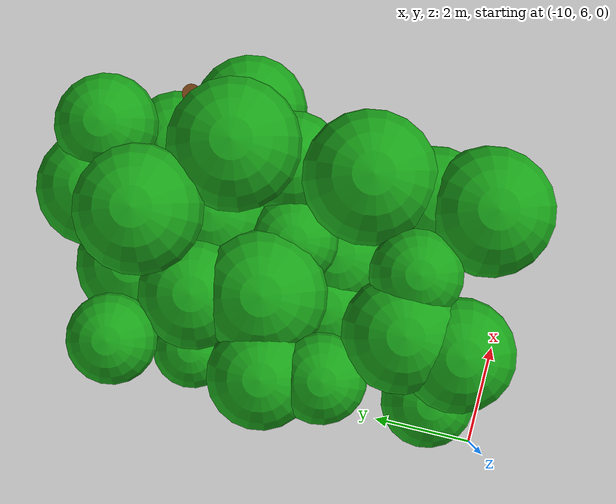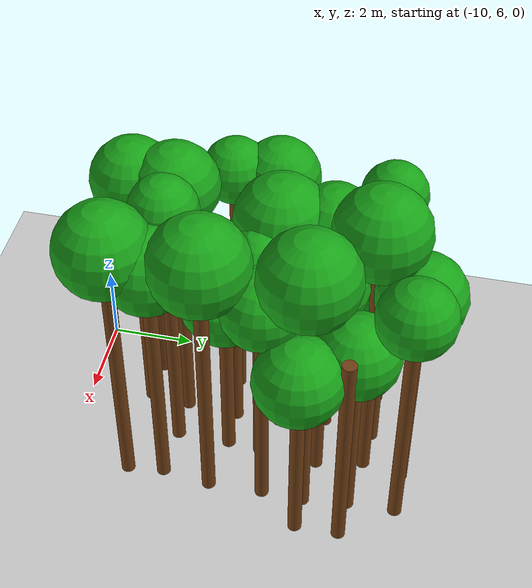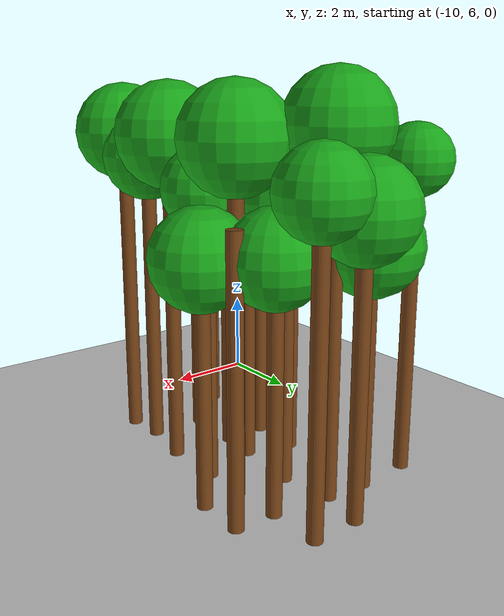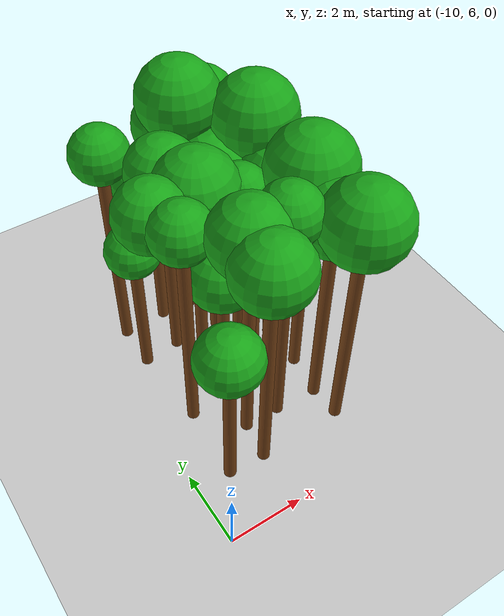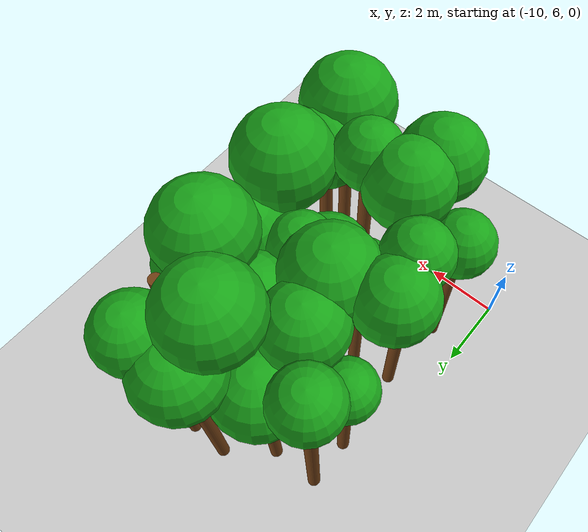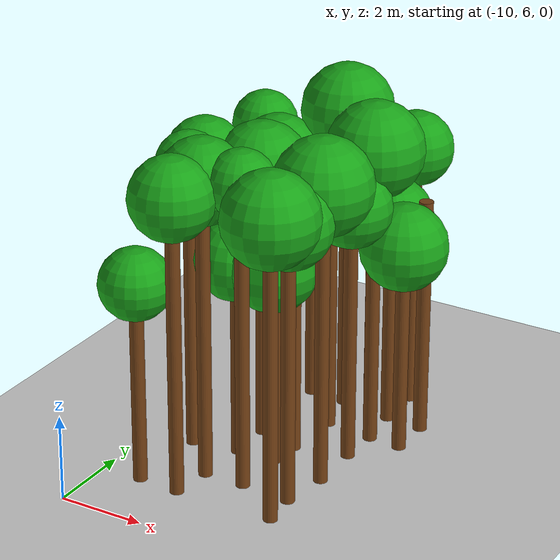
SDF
<sdf version="1.6">
 <world name="forest_world">
  <include><uri>model://sun</uri></include>
  <include><uri>model://ground_plane</uri></include>
  <model name="tree_1079_trunk">
   <static>true</static>
   <pose>-9.04 7.58 2.13 0 0 0</pose>
   <link name="link">
    <collision name="collision">
     <geometry><cylinder><radius>0.16</radius><length>4.26</length></cylinder></geometry>
    </collision>
    <visual name="visual">
     <geometry><cylinder><radius>0.16</radius><length>4.26</length></cylinder></geometry>
     <material><ambient>0.35 0.20 0.05 1</ambient><diffuse>0.45 0.25 0.08 1</diffuse></material>
    </visual>
   </link>
  </model>
  <model name="tree_1079_leaf">
   <static>true</static>
   <pose>-9.04 7.58 4.75 0 0 0</pose>
   <link name="link">
    <collision name="collision"><geometry><sphere><radius>0.82</radius></sphere></geometry></collision>
    <visual name="visual">
     <geometry><sphere><radius>0.82</radius></sphere></geometry>
     <material><ambient>0.05 0.45 0.05 1</ambient><diffuse>0.10 0.65 0.10 1</diffuse></material>
    </visual>
   </link>
  </model>
  <model name="tree_1081_trunk">
   <static>true</static>
   <pose>-8.94 9.57 3.18 0 0 0</pose>
   <link name="link">
    <collision name="collision">
     <geometry><cylinder><radius>0.16</radius><length>6.35</length></cylinder></geometry>
    </collision>
    <visual name="visual">
     <geometry><cylinder><radius>0.16</radius><length>6.35</length></cylinder></geometry>
     <material><ambient>0.35 0.20 0.05 1</ambient><diffuse>0.45 0.25 0.08 1</diffuse></material>
    </visual>
   </link>
  </model>
  <model name="tree_1081_leaf">
   <static>true</static>
   <pose>-8.94 9.57 6.81 0 0 0</pose>
   <link name="link">
    <collision name="collision"><geometry><sphere><radius>0.75</radius></sphere></geometry></collision>
    <visual name="visual">
     <geometry><sphere><radius>0.75</radius></sphere></geometry>
     <material><ambient>0.05 0.45 0.05 1</ambient><diffuse>0.10 0.65 0.10 1</diffuse></material>
    </visual>
   </link>
  </model>
  <model name="tree_1082_leaf">
   <static>true</static>
   <pose>-9.14 10.52 6.64 0 0 0</pose>
   <link name="link">
    <collision name="collision"><geometry><sphere><radius>0.89</radius></sphere></geometry></collision>
    <visual name="visual">
     <geometry><sphere><radius>0.89</radius></sphere></geometry>
     <material><ambient>0.05 0.45 0.05 1</ambient><diffuse>0.10 0.65 0.10 1</diffuse></material>
    </visual>
   </link>
  </model>
  <model name="tree_1083_trunk">
   <static>true</static>
   <pose>-9.12 11.81 2.00 0 0 0</pose>
   <link name="link">
    <collision name="collision">
     <geometry><cylinder><radius>0.16</radius><length>4.00</length></cylinder></geometry>
    </collision>
    <visual name="visual">
     <geometry><cylinder><radius>0.16</radius><length>4.00</length></cylinder></geometry>
     <material><ambient>0.35 0.20 0.05 1</ambient><diffuse>0.45 0.25 0.08 1</diffuse></material>
    </visual>
   </link>
  </model>
  <model name="tree_1083_leaf">
   <static>true</static>
   <pose>-9.12 11.81 4.44 0 0 0</pose>
   <link name="link">
    <collision name="collision"><geometry><sphere><radius>0.72</radius></sphere></geometry></collision>
    <visual name="visual">
     <geometry><sphere><radius>0.72</radius></sphere></geometry>
     <material><ambient>0.05 0.45 0.05 1</ambient><diffuse>0.10 0.65 0.10 1</diffuse></material>
    </visual>
   </link>
  </model>
  <model name="tree_1084_trunk">
   <static>true</static>
   <pose>-9.13 13.02 3.06 0 0 0</pose>
   <link name="link">
    <collision name="collision">
     <geometry><cylinder><radius>0.16</radius><length>6.13</length></cylinder></geometry>
    </collision>
    <visual name="visual">
     <geometry><cylinder><radius>0.16</radius><length>6.13</length></cylinder></geometry>
     <material><ambient>0.35 0.20 0.05 1</ambient><diffuse>0.45 0.25 0.08 1</diffuse></material>
    </visual>
   </link>
  </model>
  <model name="tree_1084_leaf">
   <static>true</static>
   <pose>-9.13 13.02 6.58 0 0 0</pose>
   <link name="link">
    <collision name="collision"><geometry><sphere><radius>0.75</radius></sphere></geometry></collision>
    <visual name="visual">
     <geometry><sphere><radius>0.75</radius></sphere></geometry>
     <material><ambient>0.05 0.45 0.05 1</ambient><diffuse>0.10 0.65 0.10 1</diffuse></material>
    </visual>
   </link>
  </model>
  <model name="tree_1134_trunk">
   <static>true</static>
   <pose>-8.05 7.53 3.19 0 0 0</pose>
   <link name="link">
    <collision name="collision">
     <geometry><cylinder><radius>0.16</radius><length>6.38</length></cylinder></geometry>
    </collision>
    <visual name="visual">
     <geometry><cylinder><radius>0.16</radius><length>6.38</length></cylinder></geometry>
     <material><ambient>0.35 0.20 0.05 1</ambient><diffuse>0.45 0.25 0.08 1</diffuse></material>
    </visual>
   </link>
  </model>
  <model name="tree_1134_leaf">
   <static>true</static>
   <pose>-8.05 7.53 6.95 0 0 0</pose>
   <link name="link">
    <collision name="collision"><geometry><sphere><radius>0.94</radius></sphere></geometry></collision>
    <visual name="visual">
     <geometry><sphere><radius>0.94</radius></sphere></geometry>
     <material><ambient>0.05 0.45 0.05 1</ambient><diffuse>0.10 0.65 0.10 1</diffuse></material>
    </visual>
   </link>
  </model>
  <model name="tree_1135_trunk">
   <static>true</static>
   <pose>-7.93 8.50 3.22 0 0 0</pose>
   <link name="link">
    <collision name="collision">
     <geometry><cylinder><radius>0.16</radius><length>6.44</length></cylinder></geometry>
    </collision>
    <visual name="visual">
     <geometry><cylinder><radius>0.16</radius><length>6.44</length></cylinder></geometry>
     <material><ambient>0.35 0.20 0.05 1</ambient><diffuse>0.45 0.25 0.08 1</diffuse></material>
    </visual>
   </link>
  </model>
  <model name="tree_1135_leaf">
   <static>true</static>
   <pose>-7.93 8.50 7.02 0 0 0</pose>
   <link name="link">
    <collision name="collision"><geometry><sphere><radius>0.97</radius></sphere></geometry></collision>
    <visual name="visual">
     <geometry><sphere><radius>0.97</radius></sphere></geometry>
     <material><ambient>0.05 0.45 0.05 1</ambient><diffuse>0.10 0.65 0.10 1</diffuse></material>
    </visual>
   </link>
  </model>
  <model name="tree_1136_trunk">
   <static>true</static>
   <pose>-7.85 9.74 2.10 0 0 0</pose>
   <link name="link">
    <collision name="collision">
     <geometry><cylinder><radius>0.16</radius><length>4.20</length></cylinder></geometry>
    </collision>
    <visual name="visual">
     <geometry><cylinder><radius>0.16</radius><length>4.20</length></cylinder></geometry>
     <material><ambient>0.35 0.20 0.05 1</ambient><diffuse>0.45 0.25 0.08 1</diffuse></material>
    </visual>
   </link>
  </model>
  <model name="tree_1136_leaf">
   <static>true</static>
   <pose>-7.85 9.74 4.77 0 0 0</pose>
   <link name="link">
    <collision name="collision"><geometry><sphere><radius>0.95</radius></sphere></geometry></collision>
    <visual name="visual">
     <geometry><sphere><radius>0.95</radius></sphere></geometry>
     <material><ambient>0.05 0.45 0.05 1</ambient><diffuse>0.10 0.65 0.10 1</diffuse></material>
    </visual>
   </link>
  </model>
  <model name="tree_1137_trunk">
   <static>true</static>
   <pose>-7.86 10.81 2.93 0 0 0</pose>
   <link name="link">
    <collision name="collision">
     <geometry><cylinder><radius>0.16</radius><length>5.87</length></cylinder></geometry>
    </collision>
    <visual name="visual">
     <geometry><cylinder><radius>0.16</radius><length>5.87</length></cylinder></geometry>
     <material><ambient>0.35 0.20 0.05 1</ambient><diffuse>0.45 0.25 0.08 1</diffuse></material>
    </visual>
   </link>
  </model>
  <model name="tree_1137_leaf">
   <static>true</static>
   <pose>-7.86 10.81 6.51 0 0 0</pose>
   <link name="link">
    <collision name="collision"><geometry><sphere><radius>1.07</radius></sphere></geometry></collision>
    <visual name="visual">
     <geometry><sphere><radius>1.07</radius></sphere></geometry>
     <material><ambient>0.05 0.45 0.05 1</ambient><diffuse>0.10 0.65 0.10 1</diffuse></material>
    </visual>
   </link>
  </model>
  <model name="tree_1138_trunk">
   <static>true</static>
   <pose>-8.10 11.90 2.92 0 0 0</pose>
   <link name="link">
    <collision name="collision">
     <geometry><cylinder><radius>0.16</radius><length>5.84</length></cylinder></geometry>
    </collision>
    <visual name="visual">
     <geometry><cylinder><radius>0.16</radius><length>5.84</length></cylinder></geometry>
     <material><ambient>0.35 0.20 0.05 1</ambient><diffuse>0.45 0.25 0.08 1</diffuse></material>
    </visual>
   </link>
  </model>
  <model name="tree_1138_leaf">
   <static>true</static>
   <pose>-8.10 11.90 6.40 0 0 0</pose>
   <link name="link">
    <collision name="collision"><geometry><sphere><radius>0.93</radius></sphere></geometry></collision>
    <visual name="visual">
     <geometry><sphere><radius>0.93</radius></sphere></geometry>
     <material><ambient>0.05 0.45 0.05 1</ambient><diffuse>0.10 0.65 0.10 1</diffuse></material>
    </visual>
   </link>
  </model>
  <model name="tree_1139_trunk">
   <static>true</static>
   <pose>-7.89 13.08 2.21 0 0 0</pose>
   <link name="link">
    <collision name="collision">
     <geometry><cylinder><radius>0.16</radius><length>4.43</length></cylinder></geometry>
    </collision>
    <visual name="visual">
     <geometry><cylinder><radius>0.16</radius><length>4.43</length></cylinder></geometry>
     <material><ambient>0.35 0.20 0.05 1</ambient><diffuse>0.45 0.25 0.08 1</diffuse></material>
    </visual>
   </link>
  </model>
  <model name="tree_1139_leaf">
   <static>true</static>
   <pose>-7.89 13.08 5.05 0 0 0</pose>
   <link name="link">
    <collision name="collision"><geometry><sphere><radius>1.04</radius></sphere></geometry></collision>
    <visual name="visual">
     <geometry><sphere><radius>1.04</radius></sphere></geometry>
     <material><ambient>0.05 0.45 0.05 1</ambient><diffuse>0.10 0.65 0.10 1</diffuse></material>
    </visual>
   </link>
  </model>
  <model name="tree_1190_trunk">
   <static>true</static>
   <pose>-6.96 8.50 3.36 0 0 0</pose>
   <link name="link">
    <collision name="collision">
     <geometry><cylinder><radius>0.16</radius><length>6.71</length></cylinder></geometry>
    </collision>
    <visual name="visual">
     <geometry><cylinder><radius>0.16</radius><length>6.71</length></cylinder></geometry>
     <material><ambient>0.35 0.20 0.05 1</ambient><diffuse>0.45 0.25 0.08 1</diffuse></material>
    </visual>
   </link>
  </model>
  <model name="tree_1190_leaf">
   <static>true</static>
   <pose>-6.96 8.50 7.17 0 0 0</pose>
   <link name="link">
    <collision name="collision"><geometry><sphere><radius>0.76</radius></sphere></geometry></collision>
    <visual name="visual">
     <geometry><sphere><radius>0.76</radius></sphere></geometry>
     <material><ambient>0.05 0.45 0.05 1</ambient><diffuse>0.10 0.65 0.10 1</diffuse></material>
    </visual>
   </link>
  </model>
  <model name="tree_1191_trunk">
   <static>true</static>
   <pose>-6.94 9.75 2.09 0 0 0</pose>
   <link name="link">
    <collision name="collision">
     <geometry><cylinder><radius>0.16</radius><length>4.18</length></cylinder></geometry>
    </collision>
    <visual name="visual">
     <geometry><cylinder><radius>0.16</radius><length>4.18</length></cylinder></geometry>
     <material><ambient>0.35 0.20 0.05 1</ambient><diffuse>0.45 0.25 0.08 1</diffuse></material>
    </visual>
   </link>
  </model>
  <model name="tree_1191_leaf">
   <static>true</static>
   <pose>-6.94 9.75 4.79 0 0 0</pose>
   <link name="link">
    <collision name="collision"><geometry><sphere><radius>1.01</radius></sphere></geometry></collision>
    <visual name="visual">
     <geometry><sphere><radius>1.01</radius></sphere></geometry>
     <material><ambient>0.05 0.45 0.05 1</ambient><diffuse>0.10 0.65 0.10 1</diffuse></material>
    </visual>
   </link>
  </model>
  <model name="tree_1192_trunk">
   <static>true</static>
   <pose>-6.88 10.53 2.86 0 0 0</pose>
   <link name="link">
    <collision name="collision">
     <geometry><cylinder><radius>0.16</radius><length>5.73</length></cylinder></geometry>
    </collision>
    <visual name="visual">
     <geometry><cylinder><radius>0.16</radius><length>5.73</length></cylinder></geometry>
     <material><ambient>0.35 0.20 0.05 1</ambient><diffuse>0.45 0.25 0.08 1</diffuse></material>
    </visual>
   </link>
  </model>
  <model name="tree_1192_leaf">
   <static>true</static>
   <pose>-6.88 10.53 6.18 0 0 0</pose>
   <link name="link">
    <collision name="collision"><geometry><sphere><radius>0.75</radius></sphere></geometry></collision>
    <visual name="visual">
     <geometry><sphere><radius>0.75</radius></sphere></geometry>
     <material><ambient>0.05 0.45 0.05 1</ambient><diffuse>0.10 0.65 0.10 1</diffuse></material>
    </visual>
   </link>
  </model>
  <model name="tree_1193_trunk">
   <static>true</static>
   <pose>-6.77 11.92 2.64 0 0 0</pose>
   <link name="link">
    <collision name="collision">
     <geometry><cylinder><radius>0.16</radius><length>5.29</length></cylinder></geometry>
    </collision>
    <visual name="visual">
     <geometry><cylinder><radius>0.16</radius><length>5.29</length></cylinder></geometry>
     <material><ambient>0.35 0.20 0.05 1</ambient><diffuse>0.45 0.25 0.08 1</diffuse></material>
    </visual>
   </link>
  </model>
  <model name="tree_1193_leaf">
   <static>true</static>
   <pose>-6.77 11.92 5.88 0 0 0</pose>
   <link name="link">
    <collision name="collision"><geometry><sphere><radius>0.98</radius></sphere></geometry></collision>
    <visual name="visual">
     <geometry><sphere><radius>0.98</radius></sphere></geometry>
     <material><ambient>0.05 0.45 0.05 1</ambient><diffuse>0.10 0.65 0.10 1</diffuse></material>
    </visual>
   </link>
  </model>
  <model name="tree_1194_trunk">
   <static>true</static>
   <pose>-6.99 13.02 3.35 0 0 0</pose>
   <link name="link">
    <collision name="collision">
     <geometry><cylinder><radius>0.16</radius><length>6.70</length></cylinder></geometry>
    </collision>
    <visual name="visual">
     <geometry><cylinder><radius>0.16</radius><length>6.70</length></cylinder></geometry>
     <material><ambient>0.35 0.20 0.05 1</ambient><diffuse>0.45 0.25 0.08 1</diffuse></material>
    </visual>
   </link>
  </model>
  <model name="tree_1194_leaf">
   <static>true</static>
   <pose>-6.99 13.02 7.33 0 0 0</pose>
   <link name="link">
    <collision name="collision"><geometry><sphere><radius>1.05</radius></sphere></geometry></collision>
    <visual name="visual">
     <geometry><sphere><radius>1.05</radius></sphere></geometry>
     <material><ambient>0.05 0.45 0.05 1</ambient><diffuse>0.10 0.65 0.10 1</diffuse></material>
    </visual>
   </link>
  </model>
  <model name="tree_1195_trunk">
   <static>true</static>
   <pose>-6.79 13.95 2.67 0 0 0</pose>
   <link name="link">
    <collision name="collision">
     <geometry><cylinder><radius>0.16</radius><length>5.34</length></cylinder></geometry>
    </collision>
    <visual name="visual">
     <geometry><cylinder><radius>0.16</radius><length>5.34</length></cylinder></geometry>
     <material><ambient>0.35 0.20 0.05 1</ambient><diffuse>0.45 0.25 0.08 1</diffuse></material>
    </visual>
   </link>
  </model>
  <model name="tree_1195_leaf">
   <static>true</static>
   <pose>-6.79 13.95 5.93 0 0 0</pose>
   <link name="link">
    <collision name="collision"><geometry><sphere><radius>0.99</radius></sphere></geometry></collision>
    <visual name="visual">
     <geometry><sphere><radius>0.99</radius></sphere></geometry>
     <material><ambient>0.05 0.45 0.05 1</ambient><diffuse>0.10 0.65 0.10 1</diffuse></material>
    </visual>
   </link>
  </model>
  <model name="tree_1244_trunk">
   <static>true</static>
   <pose>-5.70 7.58 3.18 0 0 0</pose>
   <link name="link">
    <collision name="collision">
     <geometry><cylinder><radius>0.16</radius><length>6.36</length></cylinder></geometry>
    </collision>
    <visual name="visual">
     <geometry><cylinder><radius>0.16</radius><length>6.36</length></cylinder></geometry>
     <material><ambient>0.35 0.20 0.05 1</ambient><diffuse>0.45 0.25 0.08 1</diffuse></material>
    </visual>
   </link>
  </model>
  <model name="tree_1244_leaf">
   <static>true</static>
   <pose>-5.70 7.58 6.99 0 0 0</pose>
   <link name="link">
    <collision name="collision"><geometry><sphere><radius>1.06</radius></sphere></geometry></collision>
    <visual name="visual">
     <geometry><sphere><radius>1.06</radius></sphere></geometry>
     <material><ambient>0.05 0.45 0.05 1</ambient><diffuse>0.10 0.65 0.10 1</diffuse></material>
    </visual>
   </link>
  </model>
  <model name="tree_1245_trunk">
   <static>true</static>
   <pose>-5.78 8.43 2.98 0 0 0</pose>
   <link name="link">
    <collision name="collision">
     <geometry><cylinder><radius>0.16</radius><length>5.95</length></cylinder></geometry>
    </collision>
    <visual name="visual">
     <geometry><cylinder><radius>0.16</radius><length>5.95</length></cylinder></geometry>
     <material><ambient>0.35 0.20 0.05 1</ambient><diffuse>0.45 0.25 0.08 1</diffuse></material>
    </visual>
   </link>
  </model>
  <model name="tree_1245_leaf">
   <static>true</static>
   <pose>-5.78 8.43 6.53 0 0 0</pose>
   <link name="link">
    <collision name="collision"><geometry><sphere><radius>0.97</radius></sphere></geometry></collision>
    <visual name="visual">
     <geometry><sphere><radius>0.97</radius></sphere></geometry>
     <material><ambient>0.05 0.45 0.05 1</ambient><diffuse>0.10 0.65 0.10 1</diffuse></material>
    </visual>
   </link>
  </model>
  <model name="tree_1246_trunk">
   <static>true</static>
   <pose>-5.62 9.57 3.18 0 0 0</pose>
   <link name="link">
    <collision name="collision">
     <geometry><cylinder><radius>0.16</radius><length>6.36</length></cylinder></geometry>
    </collision>
    <visual name="visual">
     <geometry><cylinder><radius>0.16</radius><length>6.36</length></cylinder></geometry>
     <material><ambient>0.35 0.20 0.05 1</ambient><diffuse>0.45 0.25 0.08 1</diffuse></material>
    </visual>
   </link>
  </model>
  <model name="tree_1246_leaf">
   <static>true</static>
   <pose>-5.62 9.57 7.02 0 0 0</pose>
   <link name="link">
    <collision name="collision"><geometry><sphere><radius>1.10</radius></sphere></geometry></collision>
    <visual name="visual">
     <geometry><sphere><radius>1.10</radius></sphere></geometry>
     <material><ambient>0.05 0.45 0.05 1</ambient><diffuse>0.10 0.65 0.10 1</diffuse></material>
    </visual>
   </link>
  </model>
  <model name="tree_1247_trunk">
   <static>true</static>
   <pose>-5.65 10.84 2.76 0 0 0</pose>
   <link name="link">
    <collision name="collision">
     <geometry><cylinder><radius>0.16</radius><length>5.52</length></cylinder></geometry>
    </collision>
    <visual name="visual">
     <geometry><cylinder><radius>0.16</radius><length>5.52</length></cylinder></geometry>
     <material><ambient>0.35 0.20 0.05 1</ambient><diffuse>0.45 0.25 0.08 1</diffuse></material>
    </visual>
   </link>
  </model>
  <model name="tree_1247_leaf">
   <static>true</static>
   <pose>-5.65 10.84 6.06 0 0 0</pose>
   <link name="link">
    <collision name="collision"><geometry><sphere><radius>0.90</radius></sphere></geometry></collision>
    <visual name="visual">
     <geometry><sphere><radius>0.90</radius></sphere></geometry>
     <material><ambient>0.05 0.45 0.05 1</ambient><diffuse>0.10 0.65 0.10 1</diffuse></material>
    </visual>
   </link>
  </model>
  <model name="tree_1248_trunk">
   <static>true</static>
   <pose>-5.62 11.81 3.20 0 0 0</pose>
   <link name="link">
    <collision name="collision">
     <geometry><cylinder><radius>0.16</radius><length>6.41</length></cylinder></geometry>
    </collision>
    <visual name="visual">
     <geometry><cylinder><radius>0.16</radius><length>6.41</length></cylinder></geometry>
     <material><ambient>0.35 0.20 0.05 1</ambient><diffuse>0.45 0.25 0.08 1</diffuse></material>
    </visual>
   </link>
  </model>
  <model name="tree_1248_leaf">
   <static>true</static>
   <pose>-5.62 11.81 7.07 0 0 0</pose>
   <link name="link">
    <collision name="collision"><geometry><sphere><radius>1.09</radius></sphere></geometry></collision>
    <visual name="visual">
     <geometry><sphere><radius>1.09</radius></sphere></geometry>
     <material><ambient>0.05 0.45 0.05 1</ambient><diffuse>0.10 0.65 0.10 1</diffuse></material>
    </visual>
   </link>
  </model>
  <model name="tree_1249_trunk">
   <static>true</static>
   <pose>-5.73 12.84 2.24 0 0 0</pose>
   <link name="link">
    <collision name="collision">
     <geometry><cylinder><radius>0.16</radius><length>4.48</length></cylinder></geometry>
    </collision>
    <visual name="visual">
     <geometry><cylinder><radius>0.16</radius><length>4.48</length></cylinder></geometry>
     <material><ambient>0.35 0.20 0.05 1</ambient><diffuse>0.45 0.25 0.08 1</diffuse></material>
    </visual>
   </link>
  </model>
  <model name="tree_1249_leaf">
   <static>true</static>
   <pose>-5.73 12.84 5.04 0 0 0</pose>
   <link name="link">
    <collision name="collision"><geometry><sphere><radius>0.95</radius></sphere></geometry></collision>
    <visual name="visual">
     <geometry><sphere><radius>0.95</radius></sphere></geometry>
     <material><ambient>0.05 0.45 0.05 1</ambient><diffuse>0.10 0.65 0.10 1</diffuse></material>
    </visual>
   </link>
  </model>
  <model name="tree_1250_trunk">
   <static>true</static>
   <pose>-5.76 13.96 2.91 0 0 0</pose>
   <link name="link">
    <collision name="collision">
     <geometry><cylinder><radius>0.16</radius><length>5.82</length></cylinder></geometry>
    </collision>
    <visual name="visual">
     <geometry><cylinder><radius>0.16</radius><length>5.82</length></cylinder></geometry>
     <material><ambient>0.35 0.20 0.05 1</ambient><diffuse>0.45 0.25 0.08 1</diffuse></material>
    </visual>
   </link>
  </model>
  <model name="tree_1250_leaf">
   <static>true</static>
   <pose>-5.76 13.96 6.33 0 0 0</pose>
   <link name="link">
    <collision name="collision"><geometry><sphere><radius>0.86</radius></sphere></geometry></collision>
    <visual name="visual">
     <geometry><sphere><radius>0.86</radius></sphere></geometry>
     <material><ambient>0.05 0.45 0.05 1</ambient><diffuse>0.10 0.65 0.10 1</diffuse></material>
    </visual>
   </link>
  </model>
  <model name="tree_1303_trunk">
   <static>true</static>
   <pose>-4.86 11.78 2.18 0 0 0</pose>
   <link name="link">
    <collision name="collision">
     <geometry><cylinder><radius>0.16</radius><length>4.37</length></cylinder></geometry>
    </collision>
    <visual name="visual">
     <geometry><cylinder><radius>0.16</radius><length>4.37</length></cylinder></geometry>
     <material><ambient>0.35 0.20 0.05 1</ambient><diffuse>0.45 0.25 0.08 1</diffuse></material>
    </visual>
   </link>
  </model>
  <model name="tree_1303_leaf">
   <static>true</static>
   <pose>-4.86 11.78 4.96 0 0 0</pose>
   <link name="link">
    <collision name="collision"><geometry><sphere><radius>0.99</radius></sphere></geometry></collision>
    <visual name="visual">
     <geometry><sphere><radius>0.99</radius></sphere></geometry>
     <material><ambient>0.05 0.45 0.05 1</ambient><diffuse>0.10 0.65 0.10 1</diffuse></material>
    </visual>
   </link>
  </model>
  <model name="tree_1304_trunk">
   <static>true</static>
   <pose>-4.86 12.79 2.83 0 0 0</pose>
   <link name="link">
    <collision name="collision">
     <geometry><cylinder><radius>0.16</radius><length>5.66</length></cylinder></geometry>
    </collision>
    <visual name="visual">
     <geometry><cylinder><radius>0.16</radius><length>5.66</length></cylinder></geometry>
     <material><ambient>0.35 0.20 0.05 1</ambient><diffuse>0.45 0.25 0.08 1</diffuse></material>
    </visual>
   </link>
  </model>
 </world>
</sdf>
